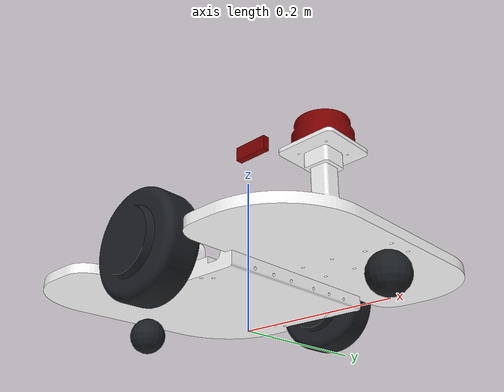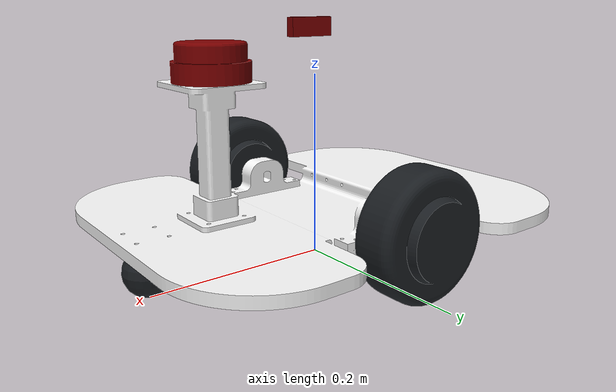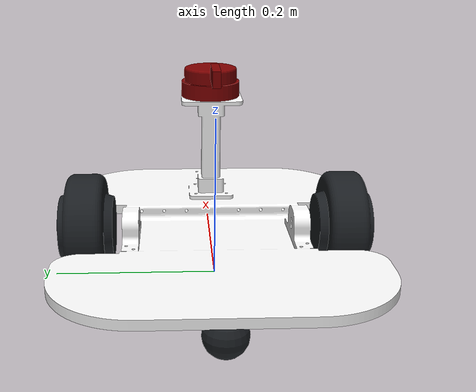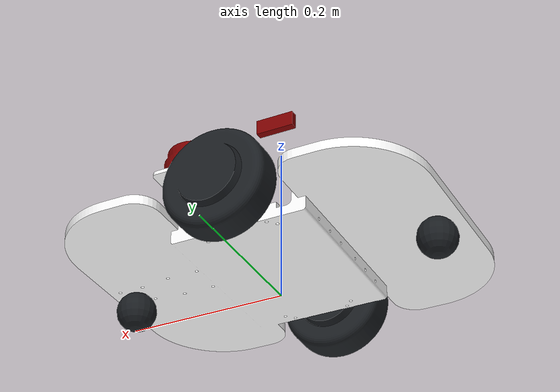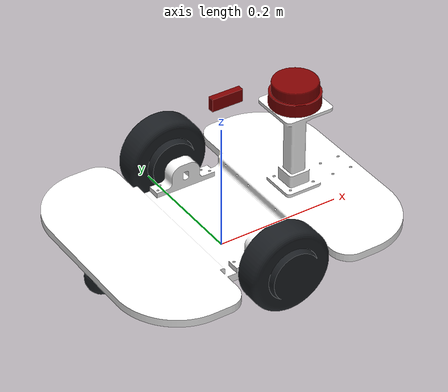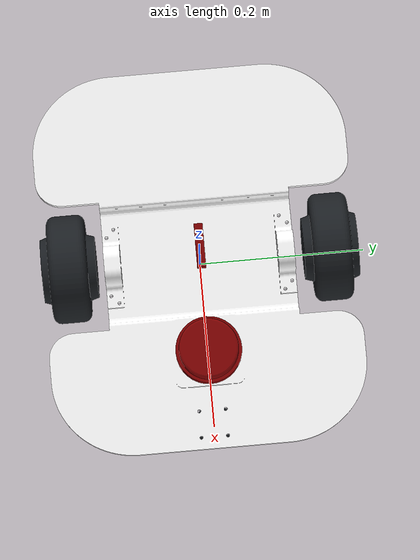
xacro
<?xml version="1.0"?>

<robot xmlns:xacro="http://www.ros.org/wiki/xacro" name="robot_name">

  <!--===== Defining all colours here =====-->
  <material name="Orange">
    <color rgba="0.5 0.2 0.0 1" />
  </material>
  <material name="Yellow">
    <color rgba="0.5 0.5 0.0 1" />
  </material>
  <material name="Red">
    <color rgba="0.5 0.0 0.0 1" />
  </material>
  <material name="Blue">
    <color rgba="0.0 0.0 0.4 1" />
  </material>
  <material name="Green">
    <color rgba="0.0 0.4 0.0 1" />
  </material>
  <material name="White">
    <color rgba="1 1 1 1" />
  </material>
  <material name="grey">
    <color rgba="0.108 0.122 0.137 1" />
  </material>

  <!--===== inertia calculator =====-->
  <xacro:macro name="box_inertia" params="m x y z">
    <inertia  ixx="${m*(y*y+z*z)/12}" ixy = "0" ixz = "0"
              iyy="${m*(x*x+z*z)/12}" iyz = "0"
              izz="${m*(x*x+z*z)/12}" />
  </xacro:macro>
  <xacro:macro name="cylinder_inertia" params="m r h">
    <inertia  ixx="${m*(3*r*r+h*h)/12}" ixy = "0" ixz = "0"
              iyy="${m*(3*r*r+h*h)/12}" iyz = "0"
              izz="${m*r*r/2}" />
  </xacro:macro>
  <xacro:macro name="sphere_inertia" params="m r">
    <inertia  ixx="${2*m*r*r/5}" ixy = "0" ixz = "0"
              iyy="${2*m*r*r/5}" iyz = "0"
              izz="${2*m*r*r/5}" />
  </xacro:macro>

  <xacro:property name="chassisMass" value = "20"/>
  <xacro:property name="chassisX" value = "0.46"/>
  <xacro:property name="chassisY" value = "0.38"/>
  <xacro:property name="chassisZ" value = "0.20"/>
  <xacro:property name="wheelMass" value = "3"/>
  <xacro:property name="wheelR" value = "0.65"/>
  <xacro:property name="wheelH" value = "0.65"/>
  <xacro:property name="casterMass" value = "0.2"/>
  <xacro:property name="casterR" value = "0.025"/>
  <xacro:property name="ridarMass" value = "0.1"/>
  <xacro:property name="ridarR" value = "0.035"/>
  <xacro:property name="ridarH" value = "0.035"/>

  <!--BASE FOOTPRINT-->
  <link name="base_footprint" />

  <!--========================================== BASE LINK ==========================================-->
  <link name="base_link">
    <inertial>
      <origin xyz="0 0 0.033" rpy="0 0 0" />
      <mass value="${chassisMass}" />
      <xacro:box_inertia m="${chassisMass}" x = "${chassisX}" y = "${chassisY}" z = "${chassisZ}"/>
    </inertial>
  <visual>
    <origin xyz="0 0 0.033" rpy="0 0 0" />
    <geometry>
      <mesh filename="package://robot/urdf/meshes/base.stl" scale="0.1 0.1 0.1"/>
    </geometry>
    <material name="White" />
  </visual>
  <collision>
    <origin xyz="0 0 0.033" rpy="0 0 0" />
    <geometry>
      <mesh filename="package://robot/urdf/meshes/base.stl" scale="0.1 0.1 0.1"/>
    </geometry>
  </collision>
  </link>

  <!--========================================== BASE JOINT ==========================================-->
  <joint name="base_joint" type="fixed">
    <origin xyz="0 0 0.0" rpy="0 0 0" />
    <parent link="base_footprint" />
    <child link="base_link" />
    <axis xyz="0 1 0" />
  </joint>

  <!--========================================== LEFT WHEEL LINK ==========================================-->
  <link name="left_wheel_link">
    <inertial>
      <origin xyz="0.0 0.0 0.0" rpy="0 0 0" />
      <mass value="${wheelMass}" />
            <xacro:cylinder_inertia m = "${wheelMass}" r = "${wheelR}" h = "${wheelH}" />
    </inertial>
    <visual>
      <origin xyz="0 0 0" rpy="0 0 0" />
      <geometry>
        <mesh filename="package://robot/urdf/meshes/wheelL.stl" scale="0.1 0.1 0.1"/>
      </geometry>
      <material name="grey" />
    </visual>
    <collision>
      <origin xyz="0 0 0" rpy="0 0 0" />
      <geometry>
        <mesh filename="package://robot/urdf/meshes/wheelL.stl" scale="0.1 0.1 0.1"/>
      </geometry>
    </collision>
  </link>

  <!--========================================== LEFT WHEEL JOINT ==========================================-->
  <joint name="left_wheel_joint" type="continuous">
    <origin xyz="0.0 0.158075 0.065" rpy="0.0 0.0 0.0"/>
    <parent link="base_link" />
    <child link="left_wheel_link" />
    <axis xyz="0 1 0" />
    <limit  effort="100.0" velocity="100.0"/>
    <joint_properties damping = "0.0" fiction = "0.0"/>

  </joint>

 <!--========================================== RIGHT WHEEL LINK ==========================================-->
 <link name="right_wheel_link">
  <inertial>
    <origin xyz="0.0 0.0 0.0" rpy="0 0 0" />
    <mass value="${wheelMass}" />
    <xacro:cylinder_inertia m = "${wheelMass}" r = "${wheelR}" h = "${wheelH}" />
  </inertial>
  <visual>
    <origin xyz="0 0 0" rpy="0 0 0" />
    <geometry>
      <mesh filename="package://robot/urdf/meshes/wheelR.stl" scale="0.1 0.1 0.1"/>
    </geometry>
    <material name="grey" />
  </visual>
  <collision>
    <origin xyz="0 0 0" rpy="0 0 0" />
    <geometry>
      <mesh filename="package://robot/urdf/meshes/wheelR.stl" scale="0.1 0.1 0.1"/>
    </geometry>
  </collision>
</link>
<!--========================================== RIGHT WHEEL JOINT ==========================================-->
<joint name="right_wheel_joint" type="continuous">
  <origin xyz="0.0 -0.158075 0.065" rpy="0 0.0 0.0"/>
  <parent link="base_link" />
  <child link="right_wheel_link" />
  <axis xyz="0 1 0" />
  <limit  effort="100.0" velocity="100.0"/>
  <joint_properties damping = "0.0" fiction = "0.0"/>
</joint>

  <!--=============================================== FRONT CASTOR WHEEL LINK ===============================================-->
  <link name="front_castor_wheel_link">
    <inertial>
      <origin xyz="0.0 0.0 0.0" rpy="0 0 0" />
      <mass value="${casterMass}" />
      <xacro:sphere_inertia m = "${casterMass}" r = "${casterR}" />
    </inertial>
    <visual>
      <origin xyz="0 0 0" rpy="0 0 0" />
      <geometry>
        <sphere radius="0.025" />
      </geometry>
      <material name="grey" />
    </visual>
    <collision>
      <origin xyz="0 0 0" rpy="0 0 0" />
      <geometry>
        <sphere radius="0.025" />
      </geometry>
      <surface>
				<friction>
					<ode>
						<mu>0.001</mu>
						<mu2>0.001</mu2>
						<slip1>1.0</slip1>
						<slip2>1.0</slip2>
					</ode>
				</friction>
			</surface>
    </collision>
  </link>
  <gazebo reference="front_castor_wheel_link">
    <material>Gazebo/White</material>
    <mu1 value="0.001"/>
    <mu2 value="0.001"/>
</gazebo>

  <!--============================================ FRONT CASTOR WHEEL JOINT ============================================-->
  <joint name="front_castor_wheel_joint" type="fixed">
    <origin xyz="0.2 0.0 0.027" rpy="0.0 0.0 0.0"/>
    <parent link="base_link" />
    <child link="front_castor_wheel_link" />
    <axis xyz="0 0 0" />
  </joint>

  <!--=============================================== REAR CASTOR WHEEL LINK ===============================================-->
  <link name="rear_castor_wheel_link">
    <inertial>
      <origin xyz="0.0 0.0 0.0" rpy="0 0 0" />
      <mass value="${casterMass}" />
      <xacro:sphere_inertia m = "${casterMass}" r = "${casterR}" />
    </inertial>
    <visual>
      <origin xyz="0 0 0" rpy="0 0 0" />
      <geometry>
        <sphere radius="0.025" />
      </geometry>
      <material name="grey" />
    </visual>
    <collision>
      <origin xyz="0 0 0" rpy="0 0 0" />
      <geometry>
        <sphere radius="0.025" />
      </geometry>
      <surface>
				<friction>
					<ode>
						<mu>0.001</mu>
						<mu2>0.001</mu2>
						<slip1>1.0</slip1>
						<slip2>1.0</slip2>
					</ode>
				</friction>
			</surface>
    </collision>
  </link>

  <gazebo reference="rear_castor_wheel_link">
    <material>Gazebo/White</material>
    <mu1 value="0.001"/>
    <mu2 value="0.001"/>
</gazebo>

  <!--============================================ REAR CASTOR WHEEL JOINT ============================================-->
  <joint name="rear_castor_wheel_joint" type="fixed">
    <origin xyz="-0.2 0.0 0.027" rpy="0.0 0.0 0.0"/>
    <parent link="base_link" />
    <child link="rear_castor_wheel_link" />
    <axis xyz="0 0 0" />
  </joint>

  <!--========================================== LASER LINK ==========================================-->
  <link name="laser_link">
    <inertial>
      <origin xyz="0 0 0" rpy="0 0 0" />
      <mass value="${ridarMass}" />
      <xacro:cylinder_inertia m = "${ridarMass}" r = "${ridarR}" h = "${ridarH}" />
    </inertial>
    <visual>
      <origin xyz="0 0 0" rpy="0 0 0" />
      <geometry>
        <mesh filename="package://robot/urdf/meshes/ridar.stl" scale="0.1 0.1 0.1"/>
      </geometry>
      <material name="Red" />
    </visual>
    <collision>
      <origin xyz="0 0 0" rpy="0 0 0" />
      <geometry>
        <mesh filename="package://robot/urdf/meshes/ridar.stl" scale="0.1 0.1 0.1"/>
      </geometry>
    </collision>
  </link>

  <!--========================================== LASER JOINT ==========================================-->
  <joint name="laser_joint" type="fixed">
    <origin xyz="0.125 0.0 0.2" rpy="0.0 0.0 0"/>
    <parent link="base_link" />
    <child link="laser_link" />
    <axis xyz="0 0 0" />
  </joint>

  <!--========================================== LIDAR PLUGIN - GAZEBO ==========================================-->
  <!--Sample size of 4000 (original value of RPLidarA1M8) gives an error-->
  <gazebo reference="laser_link">
    <!--sensor type="gpu_ray" name="laser"-->
    <sensor type="ray" name="laser">
        <pose>0 0 0 0 0 0</pose>
        <visualize>false</visualize>
        <update_rate>40</update_rate>
        <ray>
            <scan>
                <horizontal>
                    <samples>720</samples>
                    <resolution>1</resolution>
                    <min_angle>0</min_angle>
                    <max_angle>6.28</max_angle>
                </horizontal>
            </scan>
            <range>
                <min>0.1</min>
                <max>6</max>
                <resolution>0.1</resolution>
            </range>
        </ray>
        <!--plugin name="gpu_laser" filename="libgazebo_ros_gpu_laser.so"-->
        <plugin name="gpu_laser" filename="libgazebo_ros_laser.so">
            <topicName>/scan</topicName>
            <frameName>laser_link</frameName>
        </plugin>
    </sensor>
</gazebo>

      <!--========================================== IMU LINK ==========================================-->
      <link name="imu_link">
        <inertial>
          <origin xyz="0 0 0" rpy="0 0 0" />
          <mass value="0.0093378" />
          <inertia ixx="0" ixy="0" ixz="0" iyy="0" iyz="0" izz="0" />
        </inertial>
        <visual>
          <origin xyz="0 0 0" rpy="0 0 0" />
          <geometry>
            <box size="0.05 0.01 0.02"/>
          </geometry>
          <material name="Red" />
        </visual>
        <collision>
          <origin xyz="0 0 0" rpy="0 0 0" />
          <geometry>
            <box size="0.05 0.01 0.02"/>
          </geometry>
        </collision>
      </link>

      <!--========================================== IMU JOINT ==========================================-->
      <joint name="imu_joint" type="fixed">
        <origin xyz="0.0075 0.0 0.25" rpy="0 0 3.14" />
        <parent link="base_link" />
        <child link="imu_link" />
        <axis xyz="0 0 0" />
      </joint>

  <!--============================================= IMU PLUGIN - GAZEBO =============================================-->
  <gazebo reference="imu_link">
    <gravity>true</gravity>
    <sensor name="imu_sensor" type="imu">
      <always_on>true</always_on>
      <update_rate>100</update_rate>
      <visualize>true</visualize>
      <topic>__default_topic__</topic>
      <plugin filename="libgazebo_ros_imu_sensor.so" name="imu_plugin">
        <topicName>imu_data</topicName>
        <bodyName>imu_link</bodyName>
        <updateRateHZ>10.0</updateRateHZ>
        <gaussianNoise>0.0</gaussianNoise>
        <xyzOffset>0 0 0</xyzOffset>
        <rpyOffset>0 0 0</rpyOffset>
        <frameName>imu_link</frameName>
        <initialOrientationAsReference>false</initialOrientationAsReference>
      </plugin>
      <pose>0 0 0 0 0 0</pose>
    </sensor>
  </gazebo>
  <!--========================================== GAZEBO TAGS ==========================================-->

  <!--========================================== DIFF DRIVE PLUGIN - GAZEBO ==========================================-->

	<gazebo>
	  <plugin name="differential_drive_controller" filename="libgazebo_ros_diff_drive.so">
		<!-- Plugin update rate in Hz -->
		<updateRate>10</updateRate>
		<!-- Name of left joint, defaults to `left_joint` -->
		<leftJoint>left_wheel_joint</leftJoint>
		<!-- Name of right joint, defaults to `right_joint` -->
		<rightJoint>right_wheel_joint</rightJoint>
		<!-- The distance from the center of one wheel to the other, in meters, defaults to 0.34 m -->
		<wheelSeparation>0.31615</wheelSeparation>
		<!-- Diameter of the wheels, in meters, defaults to 0.15 m -->
		<wheelDiameter>0.13</wheelDiameter>
		<!-- Wheel acceleration, in rad/s^2, defaults to 0.0 rad/s^2 -->
		<wheelAcceleration>0.8</wheelAcceleration>
		<!-- Maximum torque which the wheels can produce, in Nm, defaults to 5 Nm -->
		<wheelTorque>20</wheelTorque>
		<!-- Topic to receive geometry_msgs/Twist message commands, defaults to `cmd_vel` -->
		<commandTopic>cmd_vel</commandTopic>
		<!-- Topic to publish nav_msgs/Odometry messages, defaults to `odom` -->
		<odometryTopic>odom</odometryTopic>
		<!-- Odometry frame, defaults to `odom` -->
		<odometryFrame>odom</odometryFrame>
		<!-- Robot frame to calculate odometry from, defaults to `base_footprint` -->
		<robotBaseFrame>base_footprint</robotBaseFrame>
		<!-- Odometry source, 0 for ENCODER, 1 for WORLD, defaults to WORLD -->
		<odometrySource>1</odometrySource>
		<!-- Set to true to publish transforms for the wheel links, defaults to false -->
		<publishWheelTF>true</publishWheelTF>
		<!-- Set to true to publish transforms for the odometry, defaults to true -->
		<publishOdom>true</publishOdom>
		<!-- Set to true to publish sensor_msgs/JointState on /joint_states for the wheel joints, defaults to false -->
		<publishWheelJointState>false</publishWheelJointState>
		<!-- Set to true to swap right and left wheels, defaults to true -->
		<legacyMode>false</legacyMode>
	  </plugin>
	</gazebo>

  <!--========================================== JOINT STATE PUBLISHER PLUGIN - GAZEBO ==========================================-->

</robot>
